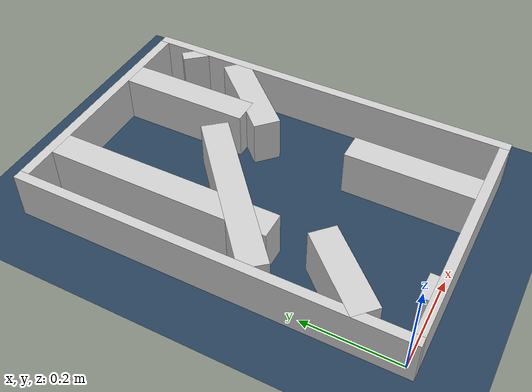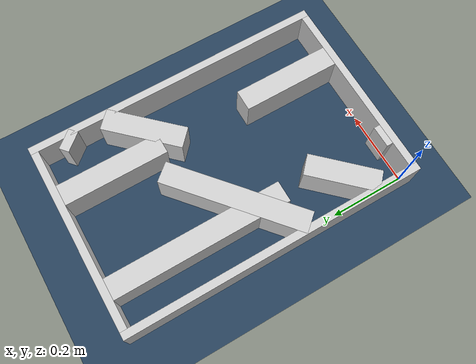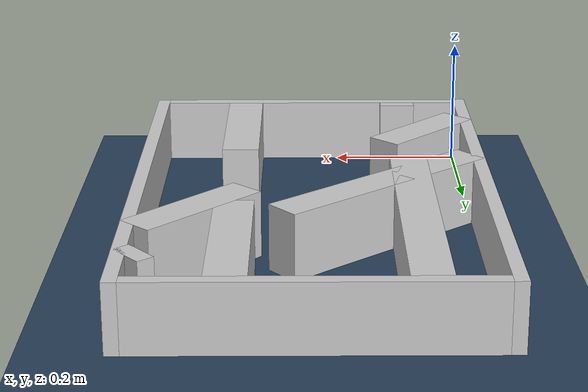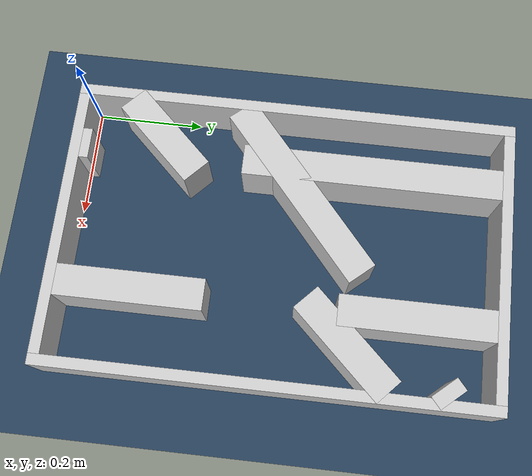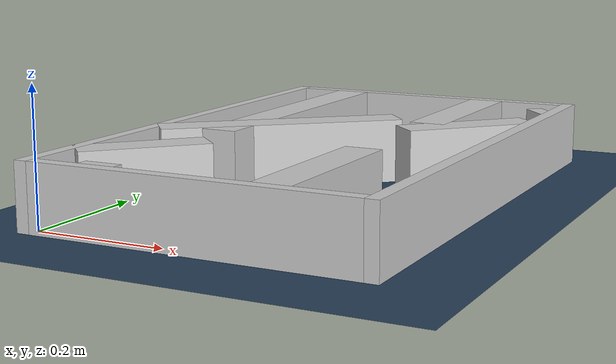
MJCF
<?xml version="1.0" ?>
<mujoco model="generated_real_template">
  <compiler angle="degree"/>
  <option timestep="0.002" integrator="implicitfast" iterations="100" cone="elliptic"/>
  <default>
    <geom density="1"/>
  </default>
  <asset>
    <texture builtin="gradient" height="3072" rgb1="0.3 0.5 0.7" rgb2="0 0 0" type="skybox" width="512"/>
    <texture builtin="checker" height="300" mark="edge" markrgb="0.8 0.8 0.8" name="groundplane" rgb1="0.2 0.3 0.4" rgb2="0.1 0.2 0.3" type="2d" width="300"/>
    <material name="groundplane" reflectance="0.2" texrepeat="5 5" texture="groundplane" texuniform="true"/>
  </asset>
  <worldbody>
    <light dir="0 0 -1" directional="true" pos="0 0 1.5"/>
    <geom name="floor" type="plane" condim="4" friction="0.5 0.005 0.001" material="groundplane" size="0 0 0.05"/>
    <body name="walls">
      <geom name="wall_boundary_left" type="box" condim="4" friction="1.0 0.005 0.0001" rgba="0.8 0.8 0.8 1" pos="-0.010000 0.387500 0.050000" euler="0 0 0.000000" size="0.010000 0.407500 0.050000"/>
      <geom name="wall_boundary_right" type="box" condim="4" friction="1.0 0.005 0.0001" rgba="0.8 0.8 0.8 1" pos="0.500000 0.387500 0.050000" euler="0 0 0.000000" size="0.010000 0.407500 0.050000"/>
      <geom name="wall_boundary_bottom" type="box" condim="4" friction="1.0 0.005 0.0001" rgba="0.8 0.8 0.8 1" pos="0.245000 -0.010000 0.050000" euler="0 0 0.000000" size="0.245000 0.010000 0.050000"/>
      <geom name="wall_boundary_top" type="box" condim="4" friction="1.0 0.005 0.0001" rgba="0.8 0.8 0.8 1" pos="0.245000 0.785000 0.050000" euler="0 0 0.000000" size="0.245000 0.010000 0.050000"/>
      <geom name="wall_inner_1_1" type="box" condim="4" friction="1.0 0.005 0.0001" rgba="0.8 0.8 0.8 1" pos="0.098356 0.008660 0.050000" euler="0 0 90.000000" size="0.008660 0.028500 0.050000"/>
      <geom name="wall_inner_1_2" type="box" condim="4" friction="1.0 0.005 0.0001" rgba="0.8 0.8 0.8 1" pos="0.098356 0.537934 0.050000" euler="0 0 90.000000" size="0.237066 0.028500 0.050000"/>
      <geom name="wall_inner_2_1" type="box" condim="4" friction="1.0 0.005 0.0001" rgba="0.8 0.8 0.8 1" pos="0.066122 0.150705 0.050000" euler="0 0 46.485962" size="0.095061 0.028500 0.050000"/>
      <geom name="wall_inner_2_2" type="box" condim="4" friction="1.0 0.005 0.0001" rgba="0.8 0.8 0.8 1" pos="0.415373 0.518558 0.050000" euler="0 0 46.485962" size="0.107414 0.028500 0.050000"/>
      <geom name="wall_inner_3_1" type="box" condim="4" friction="1.0 0.005 0.0001" rgba="0.8 0.8 0.8 1" pos="0.479937 0.697098 0.050000" euler="0 0 -139.510763" size="0.013231 0.028500 0.050000"/>
      <geom name="wall_inner_3_2" type="box" condim="4" friction="1.0 0.005 0.0001" rgba="0.8 0.8 0.8 1" pos="0.145208 0.411321 0.050000" euler="0 0 -139.510763" size="0.190930 0.028500 0.050000"/>
      <geom name="wall_inner_4_1" type="box" condim="4" friction="1.0 0.005 0.0001" rgba="0.8 0.8 0.8 1" pos="0.357629 0.132095 0.050000" euler="0 0 90.000000" size="0.132095 0.028500 0.050000"/>
      <geom name="wall_inner_4_2" type="box" condim="4" friction="1.0 0.005 0.0001" rgba="0.8 0.8 0.8 1" pos="0.357629 0.636385 0.050000" euler="0 0 90.000000" size="0.138615 0.028500 0.050000"/>
    </body>
  </worldbody>
</mujoco>
